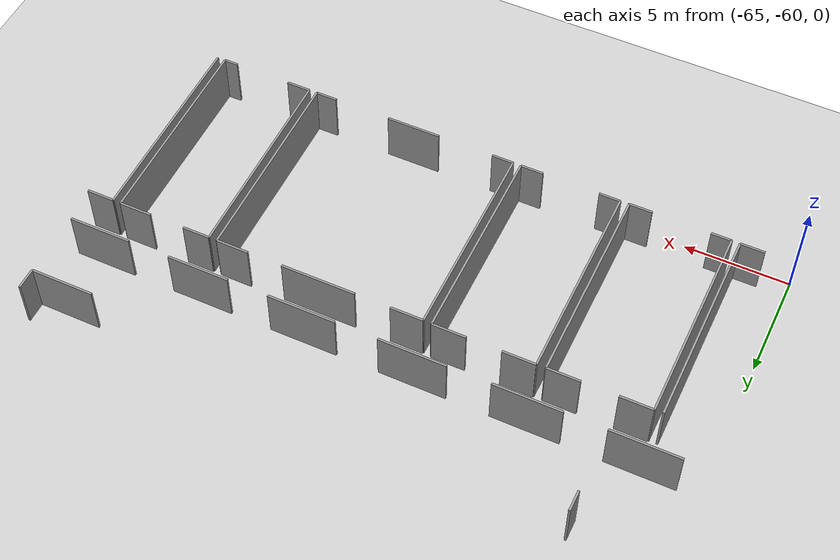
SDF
<sdf version="1.6">
 <world name="default">
  <model name="ground_plane">
   <static>1</static>
   <link name="link">
    <collision name="collision">
     <geometry><plane><normal>0 0 1</normal><size>100 100</size></plane></geometry>
     <surface><friction><ode><mu>100</mu><mu2>50</mu2></ode></friction></surface>
    </collision>
    <visual name="visual">
     <cast_shadows>0</cast_shadows>
     <geometry><plane><normal>0 0 1</normal><size>100 100</size></plane></geometry>
     <material>
      <script><uri>file://media/materials/scripts/gazebo.material</uri><name>Gazebo/Grey</name></script>
     </material>
    </visual>
   </link>
  </model>
  <model name="0510045926_A-40">
   <static>1</static>
   <link name="Wall_1317">
    <collision name="Wall_1317_Collision">
     <geometry><box><size>9.61423503804 0.1 2.5</size></box></geometry>
     <pose>4.80711751902 0 1.25 0 0 0</pose>
    </collision>
    <visual name="Wall_1317_Visual">
     <pose>4.80711751902 0 1.25 0 0 0</pose>
     <geometry><box><size>9.61423503804 0.1 2.5</size></box></geometry>
     <material>
      <script><uri>file://media/materials/scripts/gazebo.material</uri><name>Gazebo/Grey</name></script>
      <ambient>1 1 1 1</ambient>
     </material>
    </visual>
    <pose>71.4343806121 -150.806927143 0 0 0 -1.57079632679</pose>
   </link>
   <link name="Wall_1318">
    <collision name="Wall_1318_Collision">
     <geometry><box><size>1.15164706853 0.1 2.5</size></box></geometry>
     <pose>0.575823534264 0 1.25 0 0 0</pose>
    </collision>
    <visual name="Wall_1318_Visual">
     <pose>0.575823534264 0 1.25 0 0 0</pose>
     <geometry><box><size>1.15164706853 0.1 2.5</size></box></geometry>
     <material>
      <script><uri>file://media/materials/scripts/gazebo.material</uri><name>Gazebo/Grey</name></script>
      <ambient>1 1 1 1</ambient>
     </material>
    </visual>
    <pose>71.4343806121 -160.421162181 0 0 0 3.14159265359</pose>
   </link>
   <link name="Wall_1320">
    <collision name="Wall_1320_Collision">
     <geometry><box><size>9.62514992099 0.1 2.5</size></box></geometry>
     <pose>4.8125749605 0 1.25 0 0 0</pose>
    </collision>
    <visual name="Wall_1320_Visual">
     <pose>4.8125749605 0 1.25 0 0 0</pose>
     <geometry><box><size>9.62514992099 0.1 2.5</size></box></geometry>
     <material>
      <script><uri>file://media/materials/scripts/gazebo.material</uri><name>Gazebo/Grey</name></script>
      <ambient>1 1 1 1</ambient>
     </material>
    </visual>
    <pose>71.8247780535 -160.421162181 0 0 0 1.57079632679</pose>
   </link>
   <link name="Wall_1321">
    <collision name="Wall_1321_Collision">
     <geometry><box><size>1.55219788937 0.1 2.5</size></box></geometry>
     <pose>0.776098944683 0 1.25 0 0 0</pose>
    </collision>
    <visual name="Wall_1321_Visual">
     <pose>0.776098944683 0 1.25 0 0 0</pose>
     <geometry><box><size>1.55219788937 0.1 2.5</size></box></geometry>
     <material>
      <script><uri>file://media/materials/scripts/gazebo.material</uri><name>Gazebo/Grey</name></script>
      <ambient>1 1 1 1</ambient>
     </material>
    </visual>
    <pose>71.8247780535 -150.79601226 0 0 0 0.0</pose>
   </link>
   <link name="Wall_1322">
    <collision name="Wall_1322_Collision">
     <geometry><box><size>1.56362044129 0.1 2.5</size></box></geometry>
     <pose>0.781810220646 0 1.25 0 0 0</pose>
    </collision>
    <visual name="Wall_1322_Visual">
     <pose>0.781810220646 0 1.25 0 0 0</pose>
     <geometry><box><size>1.56362044129 0.1 2.5</size></box></geometry>
     <material>
      <script><uri>file://media/materials/scripts/gazebo.material</uri><name>Gazebo/Grey</name></script>
      <ambient>1 1 1 1</ambient>
     </material>
    </visual>
    <pose>75.0606600966 -150.79601226 0 0 0 0.0</pose>
   </link>
   <link name="Wall_1323">
    <collision name="Wall_1323_Collision">
     <geometry><box><size>9.62641909343 0.1 2.5</size></box></geometry>
     <pose>4.81320954672 0 1.25 0 0 0</pose>
    </collision>
    <visual name="Wall_1323_Visual">
     <pose>4.81320954672 0 1.25 0 0 0</pose>
     <geometry><box><size>9.62641909343 0.1 2.5</size></box></geometry>
     <material>
      <script><uri>file://media/materials/scripts/gazebo.material</uri><name>Gazebo/Grey</name></script>
      <ambient>1 1 1 1</ambient>
     </material>
    </visual>
    <pose>76.6242805379 -150.79601226 0 0 0 -1.57079632679</pose>
   </link>
   <link name="Wall_1324">
    <collision name="Wall_1324_Collision">
     <geometry><box><size>1.09732648826 0.1 2.5</size></box></geometry>
     <pose>0.548663244132 0 1.25 0 0 0</pose>
    </collision>
    <visual name="Wall_1324_Visual">
     <pose>0.548663244132 0 1.25 0 0 0</pose>
     <geometry><box><size>1.09732648826 0.1 2.5</size></box></geometry>
     <material>
      <script><uri>file://media/materials/scripts/gazebo.material</uri><name>Gazebo/Grey</name></script>
      <ambient>1 1 1 1</ambient>
     </material>
    </visual>
    <pose>76.6242805379 -160.422431354 0 0 0 3.14159265359</pose>
   </link>
   <link name="Wall_1325">
    <collision name="Wall_1325_Collision">
     <geometry><box><size>0.953403178771 0.1 2.5</size></box></geometry>
     <pose>0.476701589386 0 1.25 0 0 0</pose>
    </collision>
    <visual name="Wall_1325_Visual">
     <pose>0.476701589386 0 1.25 0 0 0</pose>
     <geometry><box><size>0.953403178771 0.1 2.5</size></box></geometry>
     <material>
      <script><uri>file://media/materials/scripts/gazebo.material</uri><name>Gazebo/Grey</name></script>
      <ambient>1 1 1 1</ambient>
     </material>
    </visual>
    <pose>72.7781803875 -160.422431354 0 0 0 3.14026145097</pose>
   </link>
   <link name="Wall_1326">
    <collision name="Wall_1326_Collision">
     <geometry><box><size>9.63327262459 0.1 2.5</size></box></geometry>
     <pose>4.81663631229 0 1.25 0 0 0</pose>
    </collision>
    <visual name="Wall_1326_Visual">
     <pose>4.81663631229 0 1.25 0 0 0</pose>
     <geometry><box><size>9.63327262459 0.1 2.5</size></box></geometry>
     <material>
      <script><uri>file://media/materials/scripts/gazebo.material</uri><name>Gazebo/Grey</name></script>
      <ambient>1 1 1 1</ambient>
     </material>
    </visual>
    <pose>77.0476764626 -160.408724291 0 0 0 1.57079632679</pose>
   </link>
   <link name="Wall_1327">
    <collision name="Wall_1327_Collision">
     <geometry><box><size>1.56615878616 0.1 2.5</size></box></geometry>
     <pose>0.783079393082 0 1.25 0 0 0</pose>
    </collision>
    <visual name="Wall_1327_Visual">
     <pose>0.783079393082 0 1.25 0 0 0</pose>
     <geometry><box><size>1.56615878616 0.1 2.5</size></box></geometry>
     <material>
      <script><uri>file://media/materials/scripts/gazebo.material</uri><name>Gazebo/Grey</name></script>
      <ambient>1 1 1 1</ambient>
     </material>
    </visual>
    <pose>77.0476764626 -150.775451667 0 0 0 0.0</pose>
   </link>
   <link name="Wall_1328">
    <collision name="Wall_1328_Collision">
     <geometry><box><size>1.6131181663 0.1 2.5</size></box></geometry>
     <pose>0.80655908315 0 1.25 0 0 0</pose>
    </collision>
    <visual name="Wall_1328_Visual">
     <pose>0.80655908315 0 1.25 0 0 0</pose>
     <geometry><box><size>1.6131181663 0.1 2.5</size></box></geometry>
     <material>
      <script><uri>file://media/materials/scripts/gazebo.material</uri><name>Gazebo/Grey</name></script>
      <ambient>1 1 1 1</ambient>
     </material>
    </visual>
    <pose>80.2505600223 -150.775451667 0 0 0 0.0</pose>
   </link>
   <link name="Wall_1329">
    <collision name="Wall_1329_Collision">
     <geometry><box><size>9.63454179702 0.1 2.5</size></box></geometry>
     <pose>4.81727089851 0 1.25 0 0 0</pose>
    </collision>
    <visual name="Wall_1329_Visual">
     <pose>4.81727089851 0 1.25 0 0 0</pose>
     <geometry><box><size>9.63454179702 0.1 2.5</size></box></geometry>
     <material>
      <script><uri>file://media/materials/scripts/gazebo.material</uri><name>Gazebo/Grey</name></script>
      <ambient>1 1 1 1</ambient>
     </material>
    </visual>
    <pose>81.8636781886 -150.775451667 0 0 0 -1.57079632679</pose>
   </link>
   <link name="Wall_1330">
    <collision name="Wall_1330_Collision">
     <geometry><box><size>1.09732648826 0.1 2.5</size></box></geometry>
     <pose>0.548663244132 0 1.25 0 0 0</pose>
    </collision>
    <visual name="Wall_1330_Visual">
     <pose>0.548663244132 0 1.25 0 0 0</pose>
     <geometry><box><size>1.09732648826 0.1 2.5</size></box></geometry>
     <material>
      <script><uri>file://media/materials/scripts/gazebo.material</uri><name>Gazebo/Grey</name></script>
      <ambient>1 1 1 1</ambient>
     </material>
    </visual>
    <pose>81.8636781886 -160.409993464 0 0 0 3.14159265359</pose>
   </link>
   <link name="Wall_1331">
    <collision name="Wall_1331_Collision">
     <geometry><box><size>1.0059468735 0.1 2.5</size></box></geometry>
     <pose>0.502973436751 0 1.25 0 0 0</pose>
    </collision>
    <visual name="Wall_1331_Visual">
     <pose>0.502973436751 0 1.25 0 0 0</pose>
     <geometry><box><size>1.0059468735 0.1 2.5</size></box></geometry>
     <material>
      <script><uri>file://media/materials/scripts/gazebo.material</uri><name>Gazebo/Grey</name></script>
      <ambient>1 1 1 1</ambient>
     </material>
    </visual>
    <pose>78.0536225354 -160.409993464 0 0 0 3.14033098381</pose>
   </link>
   <link name="Wall_1332">
    <collision name="Wall_1332_Collision">
     <geometry><box><size>9.61372736907 0.1 2.5</size></box></geometry>
     <pose>4.80686368453 0 1.25 0 0 0</pose>
    </collision>
    <visual name="Wall_1332_Visual">
     <pose>4.80686368453 0 1.25 0 0 0</pose>
     <geometry><box><size>9.61372736907 0.1 2.5</size></box></geometry>
     <material>
      <script><uri>file://media/materials/scripts/gazebo.material</uri><name>Gazebo/Grey</name></script>
      <ambient>1 1 1 1</ambient>
     </material>
    </visual>
    <pose>82.2543294645 -160.411770305 0 0 0 1.57079632679</pose>
   </link>
   <link name="Wall_1333">
    <collision name="Wall_1333_Collision">
     <geometry><box><size>1.56082826193 0.1 2.5</size></box></geometry>
     <pose>0.780414130966 0 1.25 0 0 0</pose>
    </collision>
    <visual name="Wall_1333_Visual">
     <pose>0.780414130966 0 1.25 0 0 0</pose>
     <geometry><box><size>1.56082826193 0.1 2.5</size></box></geometry>
     <material>
      <script><uri>file://media/materials/scripts/gazebo.material</uri><name>Gazebo/Grey</name></script>
      <ambient>1 1 1 1</ambient>
     </material>
    </visual>
    <pose>82.2543294645 -150.798042936 0 0 0 0.0</pose>
   </link>
   <link name="Wall_1334">
    <collision name="Wall_1334_Collision">
     <geometry><box><size>3.54352944163 0.1 2.5</size></box></geometry>
     <pose>1.77176472081 0 1.25 0 0 0</pose>
    </collision>
    <visual name="Wall_1334_Visual">
     <pose>1.77176472081 0 1.25 0 0 0</pose>
     <geometry><box><size>3.54352944163 0.1 2.5</size></box></geometry>
     <material>
      <script><uri>file://media/materials/scripts/gazebo.material</uri><name>Gazebo/Grey</name></script>
      <ambient>1 1 1 1</ambient>
     </material>
    </visual>
    <pose>85.500872556 -150.798042936 0 0 0 0.0</pose>
   </link>
   <link name="Wall_1335">
    <collision name="Wall_1335_Collision">
     <geometry><box><size>1.5435675168 0.1 2.5</size></box></geometry>
     <pose>0.7717837584 0 1.25 0 0 0</pose>
    </collision>
    <visual name="Wall_1335_Visual">
     <pose>0.7717837584 0 1.25 0 0 0</pose>
     <geometry><box><size>1.5435675168 0.1 2.5</size></box></geometry>
     <material>
      <script><uri>file://media/materials/scripts/gazebo.material</uri><name>Gazebo/Grey</name></script>
      <ambient>1 1 1 1</ambient>
     </material>
    </visual>
    <pose>90.707017889 -150.798042936 0 0 0 0.0</pose>
   </link>
   <link name="Wall_1336">
    <collision name="Wall_1336_Collision">
     <geometry><box><size>9.6231192451 0.1 2.5</size></box></geometry>
     <pose>4.81155962255 0 1.25 0 0 0</pose>
    </collision>
    <visual name="Wall_1336_Visual">
     <pose>4.81155962255 0 1.25 0 0 0</pose>
     <geometry><box><size>9.6231192451 0.1 2.5</size></box></geometry>
     <material>
      <script><uri>file://media/materials/scripts/gazebo.material</uri><name>Gazebo/Grey</name></script>
      <ambient>1 1 1 1</ambient>
     </material>
    </visual>
    <pose>92.2505854058 -150.798042936 0 0 0 -1.57079632679</pose>
   </link>
   <link name="Wall_1337">
    <collision name="Wall_1337_Collision">
     <geometry><box><size>1.02142997658 0.1 2.5</size></box></geometry>
     <pose>0.510714988292 0 1.25 0 0 0</pose>
    </collision>
    <visual name="Wall_1337_Visual">
     <pose>0.510714988292 0 1.25 0 0 0</pose>
     <geometry><box><size>1.02142997658 0.1 2.5</size></box></geometry>
     <material>
      <script><uri>file://media/materials/scripts/gazebo.material</uri><name>Gazebo/Grey</name></script>
      <ambient>1 1 1 1</ambient>
     </material>
    </visual>
    <pose>92.2505854058 -160.421162181 0 0 0 3.14159265359</pose>
   </link>
   <link name="Wall_1338">
    <collision name="Wall_1338_Collision">
     <geometry><box><size>2.57718154877 0.1 2.5</size></box></geometry>
     <pose>1.28859077439 0 1.25 0 0 0</pose>
    </collision>
    <visual name="Wall_1338_Visual">
     <pose>1.28859077439 0 1.25 0 0 0</pose>
     <geometry><box><size>2.57718154877 0.1 2.5</size></box></geometry>
     <material>
      <script><uri>file://media/materials/scripts/gazebo.material</uri><name>Gazebo/Grey</name></script>
      <ambient>1 1 1 1</ambient>
     </material>
    </visual>
    <pose>88.5306409955 -160.421162181 0 0 0 3.14159265359</pose>
   </link>
   <link name="Wall_1339">
    <collision name="Wall_1339_Collision">
     <geometry><box><size>1.03162610856 0.1 2.5</size></box></geometry>
     <pose>0.51581305428 0 1.25 0 0 0</pose>
    </collision>
    <visual name="Wall_1339_Visual">
     <pose>0.51581305428 0 1.25 0 0 0</pose>
     <geometry><box><size>1.03162610856 0.1 2.5</size></box></geometry>
     <material>
      <script><uri>file://media/materials/scripts/gazebo.material</uri><name>Gazebo/Grey</name></script>
      <ambient>1 1 1 1</ambient>
     </material>
    </visual>
    <pose>83.2859128205 -160.421162181 0 0 0 3.13248857442</pose>
   </link>
   <link name="Wall_1340">
    <collision name="Wall_1340_Collision">
     <geometry><box><size>9.61347353458 0.1 2.5</size></box></geometry>
     <pose>4.80673676729 0 1.25 0 0 0</pose>
    </collision>
    <visual name="Wall_1340_Visual">
     <pose>4.80673676729 0 1.25 0 0 0</pose>
     <geometry><box><size>9.61347353458 0.1 2.5</size></box></geometry>
     <material>
      <script><uri>file://media/materials/scripts/gazebo.material</uri><name>Gazebo/Grey</name></script>
      <ambient>1 1 1 1</ambient>
     </material>
    </visual>
    <pose>92.6483440473 -160.411516471 0 0 0 1.57079632679</pose>
   </link>
   <link name="Wall_1341">
    <collision name="Wall_1341_Collision">
     <geometry><box><size>1.29455588484 0.1 2.5</size></box></geometry>
     <pose>0.647277942418 0 1.25 0 0 0</pose>
    </collision>
    <visual name="Wall_1341_Visual">
     <pose>0.647277942418 0 1.25 0 0 0</pose>
     <geometry><box><size>1.29455588484 0.1 2.5</size></box></geometry>
     <material>
      <script><uri>file://media/materials/scripts/gazebo.material</uri><name>Gazebo/Grey</name></script>
      <ambient>1 1 1 1</ambient>
     </material>
    </visual>
    <pose>92.6483440473 -150.798042936 0 0 0 0.0</pose>
   </link>
   <link name="Wall_1342">
    <collision name="Wall_1342_Collision">
     <geometry><box><size>1.53772932359 0.1 2.5</size></box></geometry>
     <pose>0.768864661797 0 1.25 0 0 0</pose>
    </collision>
    <visual name="Wall_1342_Visual">
     <pose>0.768864661797 0 1.25 0 0 0</pose>
     <geometry><box><size>1.53772932359 0.1 2.5</size></box></geometry>
     <material>
      <script><uri>file://media/materials/scripts/gazebo.material</uri><name>Gazebo/Grey</name></script>
      <ambient>1 1 1 1</ambient>
     </material>
    </visual>
    <pose>95.6088156717 -150.798042936 0 0 0 0.0</pose>
   </link>
   <link name="Wall_1343">
    <collision name="Wall_1343_Collision">
     <geometry><box><size>9.6190578933 0.1 2.5</size></box></geometry>
     <pose>4.80952894665 0 1.25 0 0 0</pose>
    </collision>
    <visual name="Wall_1343_Visual">
     <pose>4.80952894665 0 1.25 0 0 0</pose>
     <geometry><box><size>9.6190578933 0.1 2.5</size></box></geometry>
     <material>
      <script><uri>file://media/materials/scripts/gazebo.material</uri><name>Gazebo/Grey</name></script>
      <ambient>1 1 1 1</ambient>
     </material>
    </visual>
    <pose>97.1465449953 -150.798042936 0 0 0 -1.57079632679</pose>
   </link>
   <link name="Wall_1344">
    <collision name="Wall_1344_Collision">
     <geometry><box><size>0.673676729089 0.1 2.5</size></box></geometry>
     <pose>0.336838364544 0 1.25 0 0 0</pose>
    </collision>
    <visual name="Wall_1344_Visual">
     <pose>0.336838364544 0 1.25 0 0 0</pose>
     <geometry><box><size>0.673676729089 0.1 2.5</size></box></geometry>
     <material>
      <script><uri>file://media/materials/scripts/gazebo.material</uri><name>Gazebo/Grey</name></script>
      <ambient>1 1 1 1</ambient>
     </material>
    </visual>
    <pose>97.1465449953 -160.417100829 0 0 0 3.14159265359</pose>
   </link>
   <link name="Wall_1345">
    <collision name="Wall_1345_Collision">
     <geometry><box><size>1.12703895831 0.1 2.5</size></box></geometry>
     <pose>0.563519479153 0 1.25 0 0 0</pose>
    </collision>
    <visual name="Wall_1345_Visual">
     <pose>0.563519479153 0 1.25 0 0 0</pose>
     <geometry><box><size>1.12703895831 0.1 2.5</size></box></geometry>
     <material>
      <script><uri>file://media/materials/scripts/gazebo.material</uri><name>Gazebo/Grey</name></script>
      <ambient>1 1 1 1</ambient>
     </material>
    </visual>
    <pose>93.7753691705 -160.417100829 0 0 0 3.13663773918</pose>
   </link>
   <link name="Wall_1346">
    <collision name="Wall_1346_Collision">
     <geometry><box><size>9.59697429291 0.1 2.5</size></box></geometry>
     <pose>4.79848714646 0 1.25 0 0 0</pose>
    </collision>
    <visual name="Wall_1346_Visual">
     <pose>4.79848714646 0 1.25 0 0 0</pose>
     <geometry><box><size>9.59697429291 0.1 2.5</size></box></geometry>
     <material>
      <script><uri>file://media/materials/scripts/gazebo.material</uri><name>Gazebo/Grey</name></script>
      <ambient>1 1 1 1</ambient>
     </material>
    </visual>
    <pose>97.5305965745 -160.40694745 0 0 0 1.57079632679</pose>
   </link>
   <link name="Wall_1347">
    <collision name="Wall_1347_Collision">
     <geometry><box><size>1.30547076779 0.1 2.5</size></box></geometry>
     <pose>0.652735383893 0 1.25 0 0 0</pose>
    </collision>
    <visual name="Wall_1347_Visual">
     <pose>0.652735383893 0 1.25 0 0 0</pose>
     <geometry><box><size>1.30547076779 0.1 2.5</size></box></geometry>
     <material>
      <script><uri>file://media/materials/scripts/gazebo.material</uri><name>Gazebo/Grey</name></script>
      <ambient>1 1 1 1</ambient>
     </material>
    </visual>
    <pose>97.5305965745 -150.809973157 0 0 0 0.0</pose>
   </link>
   <link name="Wall_1430">
    <collision name="Wall_1430_Collision">
     <geometry><box><size>0.985385479398 0.1 2.5</size></box></geometry>
     <pose>0.492692739699 0 1.25 0 0 0</pose>
    </collision>
    <visual name="Wall_1430_Visual">
     <pose>0.492692739699 0 1.25 0 0 0</pose>
     <geometry><box><size>0.985385479398 0.1 2.5</size></box></geometry>
     <material>
      <script><uri>file://media/materials/scripts/gazebo.material</uri><name>Gazebo/Grey</name></script>
      <ambient>1 1 1 1</ambient>
     </material>
    </visual>
    <pose>73.2147757055 -145.987371734 0 0 0 1.57079632679</pose>
   </link>
   <link name="Wall_1454">
    <collision name="Wall_1454_Collision">
     <geometry><box><size>2.99321627333 0.1 2.5</size></box></geometry>
     <pose>1.49660813666 0 1.25 0 0 0</pose>
    </collision>
    <visual name="Wall_1454_Visual">
     <pose>1.49660813666 0 1.25 0 0 0</pose>
     <geometry><box><size>2.99321627333 0.1 2.5</size></box></geometry>
     <material>
      <script><uri>file://media/materials/scripts/gazebo.material</uri><name>Gazebo/Grey</name></script>
      <ambient>1 1 1 1</ambient>
     </material>
    </visual>
    <pose>95.7014652596 -145.975695348 0 0 0 0.0</pose>
   </link>
   <link name="Wall_1455">
    <collision name="Wall_1455_Collision">
     <geometry><box><size>1.01153043158 0.1 2.5</size></box></geometry>
     <pose>0.505765215791 0 1.25 0 0 0</pose>
    </collision>
    <visual name="Wall_1455_Visual">
     <pose>0.505765215791 0 1.25 0 0 0</pose>
     <geometry><box><size>1.01153043158 0.1 2.5</size></box></geometry>
     <material>
      <script><uri>file://media/materials/scripts/gazebo.material</uri><name>Gazebo/Grey</name></script>
      <ambient>1 1 1 1</ambient>
     </material>
    </visual>
    <pose>98.6946815329 -145.975695348 0 0 0 1.57079632679</pose>
   </link>
   <link name="Wall_1468">
    <collision name="Wall_1468_Collision">
     <geometry><box><size>2.95158741742 0.1 2.5</size></box></geometry>
     <pose>1.47579370871 0 1.25 0 0 0</pose>
    </collision>
    <visual name="Wall_1468_Visual">
     <pose>1.47579370871 0 1.25 0 0 0</pose>
     <geometry><box><size>2.95158741742 0.1 2.5</size></box></geometry>
     <material>
      <script><uri>file://media/materials/scripts/gazebo.material</uri><name>Gazebo/Grey</name></script>
      <ambient>1 1 1 1</ambient>
     </material>
    </visual>
    <pose>98.6718364291 -149.118673969 0 0 0 3.14159265359</pose>
   </link>
   <link name="Wall_1469">
    <collision name="Wall_1469_Collision">
     <geometry><box><size>2.94448005178 0.1 2.5</size></box></geometry>
     <pose>1.47224002589 0 1.25 0 0 0</pose>
    </collision>
    <visual name="Wall_1469_Visual">
     <pose>1.47224002589 0 1.25 0 0 0</pose>
     <geometry><box><size>2.94448005178 0.1 2.5</size></box></geometry>
     <material>
      <script><uri>file://media/materials/scripts/gazebo.material</uri><name>Gazebo/Grey</name></script>
      <ambient>1 1 1 1</ambient>
     </material>
    </visual>
    <pose>93.7339941491 -149.118673969 0 0 0 3.14159265359</pose>
   </link>
   <link name="Wall_1470">
    <collision name="Wall_1470_Collision">
     <geometry><box><size>3.23664354658 0.1 2.5</size></box></geometry>
     <pose>1.61832177329 0 1.25 0 0 0</pose>
    </collision>
    <visual name="Wall_1470_Visual">
     <pose>1.61832177329 0 1.25 0 0 0</pose>
     <geometry><box><size>3.23664354658 0.1 2.5</size></box></geometry>
     <material>
      <script><uri>file://media/materials/scripts/gazebo.material</uri><name>Gazebo/Grey</name></script>
      <ambient>1 1 1 1</ambient>
     </material>
    </visual>
    <pose>88.8426035803 -149.118673969 0 0 0 3.14159265359</pose>
   </link>
   <link name="Wall_1471">
    <collision name="Wall_1471_Collision">
     <geometry><box><size>3.20796024952 0.1 2.5</size></box></geometry>
     <pose>1.60398012476 0 1.25 0 0 0</pose>
    </collision>
    <visual name="Wall_1471_Visual">
     <pose>1.60398012476 0 1.25 0 0 0</pose>
     <geometry><box><size>3.20796024952 0.1 2.5</size></box></geometry>
     <material>
      <script><uri>file://media/materials/scripts/gazebo.material</uri><name>Gazebo/Grey</name></script>
      <ambient>1 1 1 1</ambient>
     </material>
    </visual>
    <pose>83.5968600674 -149.118673969 0 0 0 3.14159265359</pose>
   </link>
   <link name="Wall_1472">
    <collision name="Wall_1472_Collision">
     <geometry><box><size>3.23105918786 0.1 2.5</size></box></geometry>
     <pose>1.61552959393 0 1.25 0 0 0</pose>
    </collision>
    <visual name="Wall_1472_Visual">
     <pose>1.61552959393 0 1.25 0 0 0</pose>
     <geometry><box><size>3.23105918786 0.1 2.5</size></box></geometry>
     <material>
      <script><uri>file://media/materials/scripts/gazebo.material</uri><name>Gazebo/Grey</name></script>
      <ambient>1 1 1 1</ambient>
     </material>
    </visual>
    <pose>78.3719309824 -149.118673969 0 0 0 3.14159265359</pose>
   </link>
   <link name="Wall_1473">
    <collision name="Wall_1473_Collision">
     <geometry><box><size>3.26532684363 0.1 2.5</size></box></geometry>
     <pose>1.63266342182 0 1.25 0 0 0</pose>
    </collision>
    <visual name="Wall_1473_Visual">
     <pose>1.63266342182 0 1.25 0 0 0</pose>
     <geometry><box><size>3.26532684363 0.1 2.5</size></box></geometry>
     <material>
      <script><uri>file://media/materials/scripts/gazebo.material</uri><name>Gazebo/Grey</name></script>
      <ambient>1 1 1 1</ambient>
     </material>
    </visual>
    <pose>73.1977687949 -149.118673969 0 0 0 3.14159265359</pose>
   </link>
   <pose>-133.95 101.113233661 0 0 0 0</pose>
  </model>
 </world>
</sdf>
